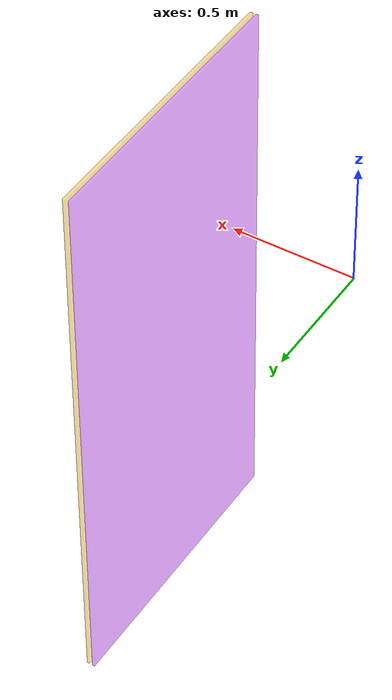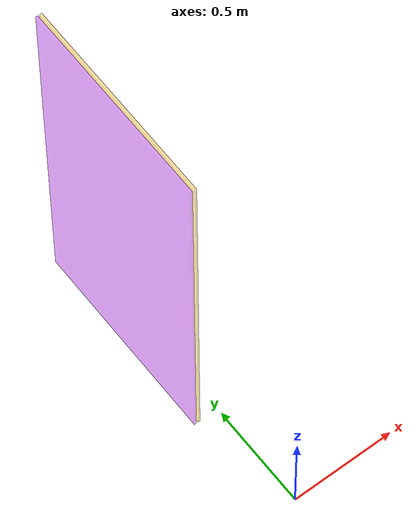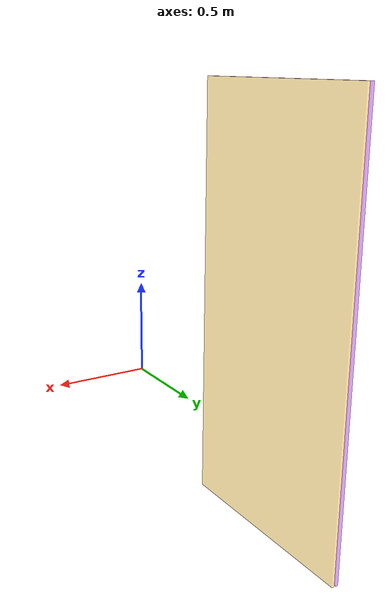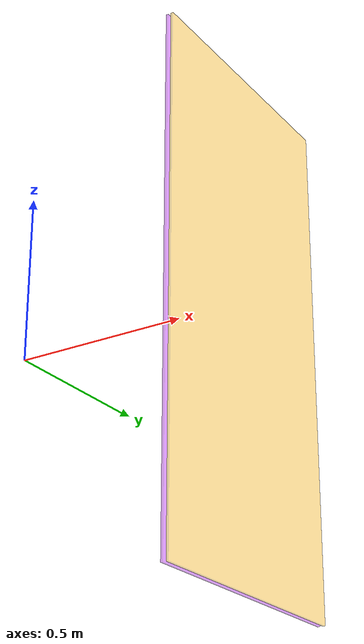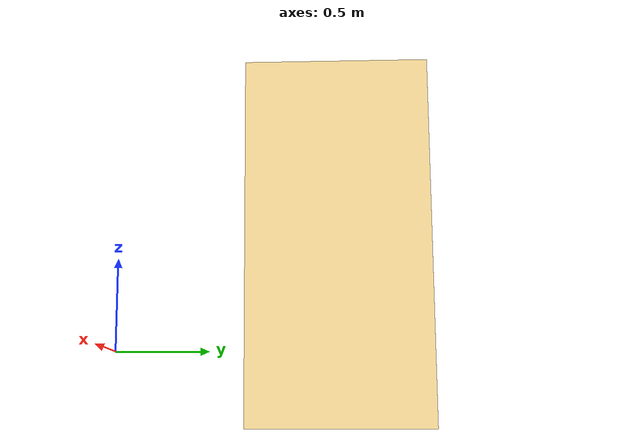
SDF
<sdf version="1.7"><model name="front"><static>true</static><link name="aoi_plane"><pose>-0.0002444078444342134 1.1819999751103354 0.6 0 -1.5708 1.571</pose><visual name="front_face"><geometry><box><size>2.0 0.01 1.0</size></box></geometry><material><ambient>0.7 0.0 1.0 0.4</ambient><diffuse>0.7 0.0 1.0 0.4</diffuse></material></visual><visual name="back_face"><pose>0 -0.02 0 0 0 0</pose><geometry><box><size>2.0 0.01 1.0</size></box></geometry><material><ambient>1.0 0.7 0.0 0.4</ambient><diffuse>1.0 0.7 0.0 0.4</diffuse></material></visual></link></model></sdf>
